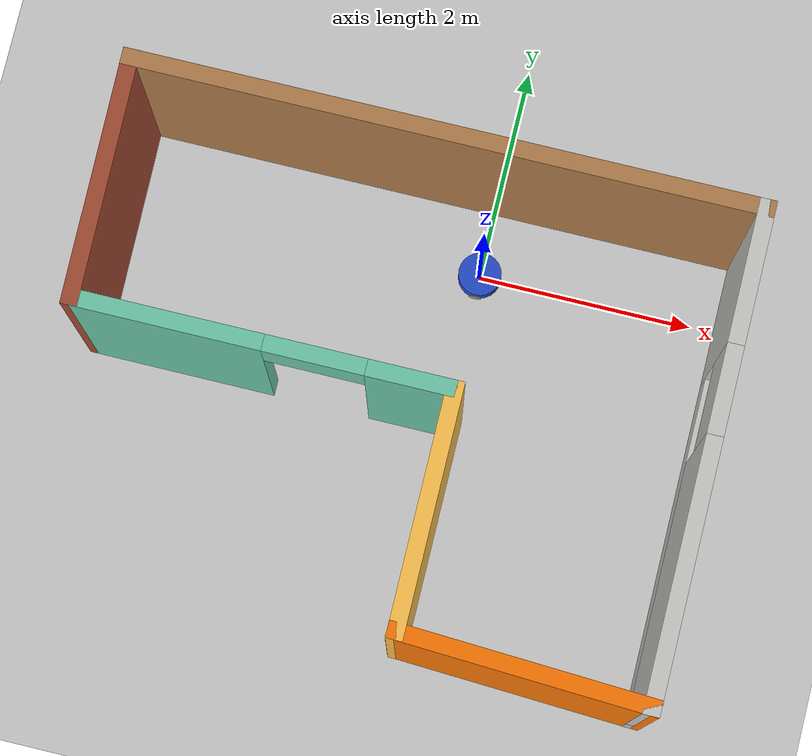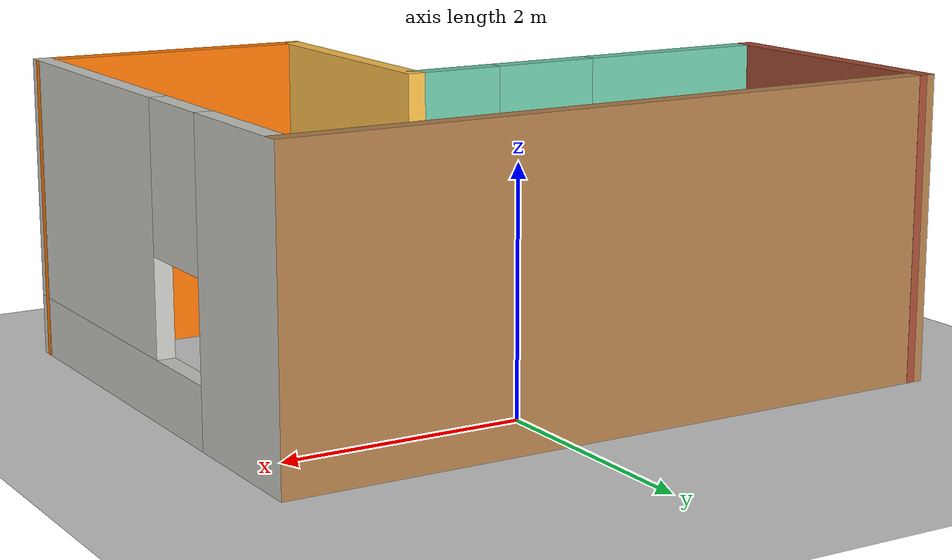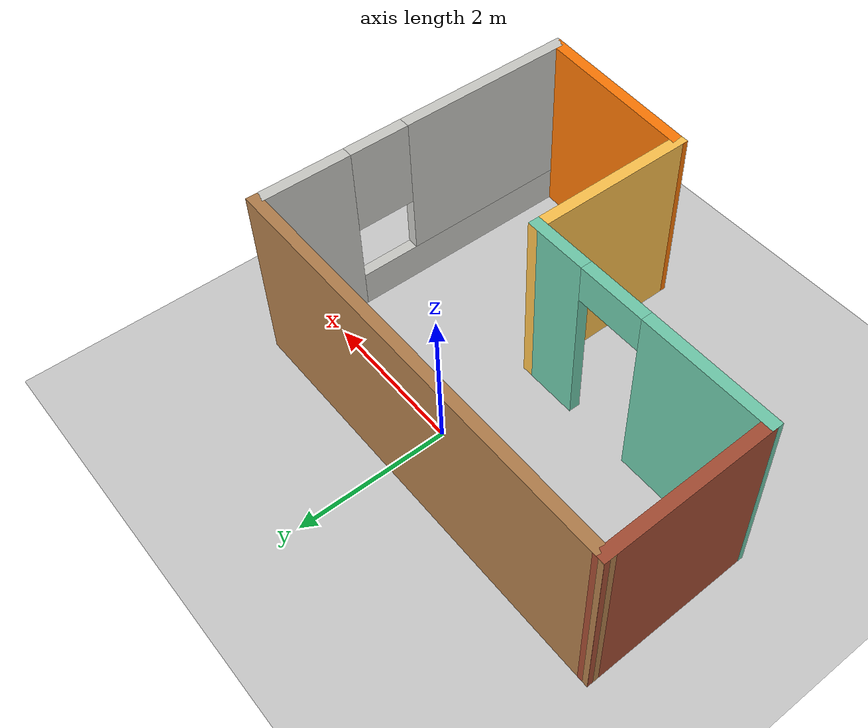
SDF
<sdf version="1.7">
 <world name="default">
  <light name="sun" type="directional">
   <pose>0 0 10 0 -0 0</pose>
   <diffuse>0.8 0.8 0.8 1</diffuse>
   <specular>0.2 0.2 0.2 1</specular>
   <attenuation>
    <range>1000</range>
    <constant>0.9</constant>
    <linear>0.01</linear>
    <quadratic>0.001</quadratic>
   </attenuation>
   <direction>-0.5 0.1 -0.9</direction>
   <spot><inner_angle>0</inner_angle><outer_angle>0</outer_angle><falloff>0</falloff></spot>
  </light>
  <model name="ground_plane">
   <static>1</static>
   <link name="link">
    <collision name="collision">
     <geometry><plane><normal>0 0 1</normal><size>100 100</size></plane></geometry>
     <surface><friction><ode><mu>100</mu><mu2>50</mu2></ode></friction></surface>
    </collision>
    <visual name="visual">
     <cast_shadows>0</cast_shadows>
     <geometry><plane><normal>0 0 1</normal><size>100 100</size></plane></geometry>
     <material>
      <script><uri>file://media/materials/scripts/gazebo.material</uri><name>Gazebo/Grey</name></script>
     </material>
    </visual>
   </link>
  </model>
  <gravity>0 0 -9.8</gravity>
  <magnetic_field>6e-06 2.3e-05 -4.2e-05</magnetic_field>
  <atmosphere type="adiabatic"/>
  <physics type="ode">
   <max_step_size>0.001</max_step_size>
   <real_time_factor>1</real_time_factor>
   <real_time_update_rate>1000</real_time_update_rate>
  </physics>
  <scene><ambient>0.4 0.4 0.4 1</ambient><background>0.7 0.7 0.7 1</background><shadows>1</shadows></scene>
  <spherical_coordinates>
   <surface_model>EARTH_WGS84</surface_model>
   <latitude_deg>0</latitude_deg>
   <longitude_deg>0</longitude_deg>
   <elevation>0</elevation>
   <heading_deg>0</heading_deg>
  </spherical_coordinates>
  <model name="mrobot">
   <link name="base_footprint">
    <inertial>
     <pose>0 0 0.11 0 -0 0</pose>
     <mass>20</mass>
     <inertia><ixx>0.242667</ixx><ixy>0</ixy><ixz>0</ixz><iyy>0.242667</iyy><iyz>0</iyz><izz>0.4</izz></inertia>
    </inertial>
    <collision name="base_footprint_fixed_joint_lump__base_link_collision">
     <pose>0 0 0.11 0 -0 0</pose>
     <geometry><cylinder><length>0.16</length><radius>0.2</radius></cylinder></geometry>
    </collision>
    <visual name="base_footprint_visual"><geometry><box><size>0.001 0.001 0.001</size></box></geometry></visual>
    <visual name="base_footprint_fixed_joint_lump__base_link_visual_1">
     <pose>0 0 0.11 0 -0 0</pose>
     <geometry><cylinder><length>0.16</length><radius>0.2</radius></cylinder></geometry>
     <material>
      <script><name>Gazebo/Blue</name><uri>file://media/materials/scripts/gazebo.material</uri></script>
     </material>
    </visual>
   </link>
   <joint name="back_caster_joint" type="revolute">
    <pose relative_to="base_footprint">0.18 0 0.015 0 -0 0</pose>
    <parent>base_footprint</parent>
    <child>back_caster_link</child>
    <axis>
     <xyz>0 1 0</xyz>
     <limit><lower>-1e+16</lower><upper>1e+16</upper></limit>
     <dynamics><spring_reference>0</spring_reference><spring_stiffness>0</spring_stiffness></dynamics>
    </axis>
   </joint>
   <link name="back_caster_link">
    <pose relative_to="back_caster_joint">0 0 0 0 -0 0</pose>
    <inertial>
     <mass>0.5</mass>
     <inertia><ixx>4.5e-05</ixx><ixy>0</ixy><ixz>0</ixz><iyy>4.5e-05</iyy><iyz>0</iyz><izz>4.5e-05</izz></inertia>
    </inertial>
    <collision name="back_caster_link_collision">
     <geometry><sphere><radius>0.015</radius></sphere></geometry>
    </collision>
    <visual name="back_caster_link_visual">
     <geometry><sphere><radius>0.015</radius></sphere></geometry>
     <material>
      <script><name>Gazebo/Black</name><uri>file://media/materials/scripts/gazebo.material</uri></script>
     </material>
    </visual>
   </link>
   <joint name="front_caster_joint" type="revolute">
    <pose relative_to="base_footprint">-0.18 0 0.015 0 -0 0</pose>
    <parent>base_footprint</parent>
    <child>front_caster_link</child>
    <axis>
     <xyz>0 1 0</xyz>
     <limit><lower>-1e+16</lower><upper>1e+16</upper></limit>
     <dynamics><spring_reference>0</spring_reference><spring_stiffness>0</spring_stiffness></dynamics>
    </axis>
   </joint>
   <link name="front_caster_link">
    <pose relative_to="front_caster_joint">0 0 0 0 -0 0</pose>
    <inertial>
     <mass>0.5</mass>
     <inertia><ixx>4.5e-05</ixx><ixy>0</ixy><ixz>0</ixz><iyy>4.5e-05</iyy><iyz>0</iyz><izz>4.5e-05</izz></inertia>
    </inertial>
    <collision name="front_caster_link_collision">
     <geometry><sphere><radius>0.015</radius></sphere></geometry>
    </collision>
    <visual name="front_caster_link_visual">
     <geometry><sphere><radius>0.015</radius></sphere></geometry>
     <material>
      <script><name>Gazebo/Black</name><uri>file://media/materials/scripts/gazebo.material</uri></script>
     </material>
    </visual>
   </link>
   <joint name="left_wheel_joint" type="revolute">
    <pose relative_to="base_footprint">0 -0.19 0.06 0 -0 0</pose>
    <parent>base_footprint</parent>
    <child>left_wheel_link</child>
    <axis>
     <xyz>0 1 0</xyz>
     <limit><lower>-1e+16</lower><upper>1e+16</upper></limit>
     <dynamics><spring_reference>0</spring_reference><spring_stiffness>0</spring_stiffness></dynamics>
    </axis>
   </joint>
   <link name="left_wheel_link">
    <pose relative_to="left_wheel_joint">0 0 0 0 -0 0</pose>
    <inertial>
     <mass>2</mass>
     <inertia>
      <ixx>0.00190417</ixx>
      <ixy>0</ixy>
      <ixz>0</ixz>
      <iyy>0.00190417</iyy>
      <iyz>0</iyz>
      <izz>0.0036</izz>
     </inertia>
    </inertial>
    <collision name="left_wheel_link_collision">
     <pose>0 0 0 1.5708 -0 0</pose>
     <geometry><cylinder><length>0.025</length><radius>0.06</radius></cylinder></geometry>
    </collision>
    <visual name="left_wheel_link_visual">
     <pose>0 0 0 1.5708 -0 0</pose>
     <geometry><cylinder><length>0.025</length><radius>0.06</radius></cylinder></geometry>
     <material>
      <script><name>Gazebo/Gray</name><uri>file://media/materials/scripts/gazebo.material</uri></script>
     </material>
    </visual>
   </link>
   <joint name="right_wheel_joint" type="revolute">
    <pose relative_to="base_footprint">0 0.19 0.06 0 -0 0</pose>
    <parent>base_footprint</parent>
    <child>right_wheel_link</child>
    <axis>
     <xyz>0 1 0</xyz>
     <limit><lower>-1e+16</lower><upper>1e+16</upper></limit>
     <dynamics><spring_reference>0</spring_reference><spring_stiffness>0</spring_stiffness></dynamics>
    </axis>
   </joint>
   <link name="right_wheel_link">
    <pose relative_to="right_wheel_joint">0 0 0 0 -0 0</pose>
    <inertial>
     <mass>2</mass>
     <inertia>
      <ixx>0.00190417</ixx>
      <ixy>0</ixy>
      <ixz>0</ixz>
      <iyy>0.00190417</iyy>
      <iyz>0</iyz>
      <izz>0.0036</izz>
     </inertia>
    </inertial>
    <collision name="right_wheel_link_collision">
     <pose>0 0 0 1.5708 -0 0</pose>
     <geometry><cylinder><length>0.025</length><radius>0.06</radius></cylinder></geometry>
    </collision>
    <visual name="right_wheel_link_visual">
     <pose>0 0 0 1.5708 -0 0</pose>
     <geometry><cylinder><length>0.025</length><radius>0.06</radius></cylinder></geometry>
     <material>
      <script><name>Gazebo/Gray</name><uri>file://media/materials/scripts/gazebo.material</uri></script>
     </material>
    </visual>
   </link>
   <static>0</static>
   <plugin name="differential_drive_controller" filename="libgazebo_ros_diff_drive.so">
    <rosDebugLevel>Debug</rosDebugLevel>
    <publishWheelTF>1</publishWheelTF>
    <robotNamespace>/</robotNamespace>
    <publishTf>1</publishTf>
    <publishWheelJointState>1</publishWheelJointState>
    <alwaysOn>1</alwaysOn>
    <updateRate>100.0</updateRate>
    <legacyMode>1</legacyMode>
    <leftJoint>left_wheel_joint</leftJoint>
    <rightJoint>right_wheel_joint</rightJoint>
    <wheelSeparation>0.38</wheelSeparation>
    <wheelDiameter>0.12</wheelDiameter>
    <broadcastTF>1</broadcastTF>
    <wheelTorque>30</wheelTorque>
    <wheelAcceleration>1.8</wheelAcceleration>
    <commandTopic>cmd_vel</commandTopic>
    <odometryFrame>odom</odometryFrame>
    <odometryTopic>odom</odometryTopic>
    <robotBaseFrame>base_footprint</robotBaseFrame>
   </plugin>
   <pose>-0.000425 0.000437 0 0 0 -2.5e-05</pose>
  </model>
  <model name="room">
   <pose>-0.498712 -1.48629 0 0 -0 0</pose>
   <link name="Wall_0">
    <pose>-1.09629 0.036288 0 0 -0 3.14159</pose>
    <visual name="Wall_0_Visual_0">
     <pose>-1.3275 0 1.25 0 -0 0</pose>
     <geometry><box><size>0.845 0.15 2.5</size></box></geometry>
     <material>
      <script><uri>file://media/materials/scripts/gazebo.material</uri><name>Gazebo/Grey</name></script>
      <ambient>0.435294 0.796078 0.67451 1</ambient>
     </material>
     <meta><layer>0</layer></meta>
    </visual>
    <collision name="Wall_0_Collision_0">
     <geometry><box><size>0.845 0.15 2.5</size></box></geometry>
     <pose>-1.3275 0 1.25 0 -0 0</pose>
    </collision>
    <visual name="Wall_0_Visual_1">
     <pose>0.8725 0 1.25 0 -0 0</pose>
     <geometry><box><size>1.755 0.15 2.5</size></box></geometry>
     <material>
      <script><uri>file://media/materials/scripts/gazebo.material</uri><name>Gazebo/Grey</name></script>
      <ambient>0.435294 0.796078 0.67451 1</ambient>
     </material>
     <meta><layer>0</layer></meta>
    </visual>
    <collision name="Wall_0_Collision_1">
     <geometry><box><size>1.755 0.15 2.5</size></box></geometry>
     <pose>0.8725 0 1.25 0 -0 0</pose>
    </collision>
    <visual name="Wall_0_Visual_2">
     <pose>-0.455 0 2.25 0 -0 0</pose>
     <geometry><box><size>0.9 0.15 0.5</size></box></geometry>
     <material>
      <script><uri>file://media/materials/scripts/gazebo.material</uri><name>Gazebo/Grey</name></script>
      <ambient>0.435294 0.796078 0.67451 1</ambient>
     </material>
     <meta><layer>0</layer></meta>
    </visual>
    <collision name="Wall_0_Collision_2">
     <geometry><box><size>0.9 0.15 0.5</size></box></geometry>
     <pose>-0.455 0 2.25 0 -0 0</pose>
    </collision>
   </link>
   <link name="Wall_10">
    <collision name="Wall_10_Collision">
     <geometry><box><size>2.37272 0.15 2.5</size></box></geometry>
     <pose>0 0 1.25 0 -0 0</pose>
    </collision>
    <visual name="Wall_10_Visual">
     <pose>0 0 1.25 0 -0 0</pose>
     <geometry><box><size>2.37272 0.15 2.5</size></box></geometry>
     <material>
      <script><uri>file://media/materials/scripts/gazebo.material</uri><name>Gazebo/Grey</name></script>
      <ambient>0.996078 0.47451 0.0196078 1</ambient>
     </material>
     <meta><layer>0</layer></meta>
    </visual>
    <pose>1.68871 -2.11871 0 0 -0 -0.049509</pose>
   </link>
   <link name="Wall_2">
    <collision name="Wall_2_Collision">
     <geometry><box><size>2.25 0.15 2.5</size></box></geometry>
     <pose>0 0 1.25 0 -0 0</pose>
    </collision>
    <visual name="Wall_2_Visual">
     <pose>0 0 1.25 0 -0 0</pose>
     <geometry><box><size>2.25 0.15 2.5</size></box></geometry>
     <material>
      <script><uri>file://media/materials/scripts/gazebo.material</uri><name>Gazebo/Grey</name></script>
      <ambient>1 0.764706 0.305882 1</ambient>
     </material>
     <meta><layer>0</layer></meta>
    </visual>
    <pose>0.578712 -1.01371 0 0 -0 -1.5708</pose>
   </link>
   <link name="Wall_5">
    <collision name="Wall_5_Collision">
     <geometry><box><size>2.29021 0.15 2.5</size></box></geometry>
     <pose>0 0 1.25 0 -0 0</pose>
    </collision>
    <visual name="Wall_5_Visual">
     <pose>0 0 1.25 0 -0 0</pose>
     <geometry><box><size>2.29021 0.15 2.5</size></box></geometry>
     <material>
      <script><uri>file://media/materials/scripts/gazebo.material</uri><name>Gazebo/Bricks</name></script>
      <ambient>1 1 1 1</ambient>
     </material>
     <meta><layer>0</layer></meta>
    </visual>
    <pose>-2.78629 1.10629 0 0 -0 -1.55678</pose>
   </link>
   <link name="Wall_7">
    <collision name="Wall_7_Collision">
     <geometry><box><size>5.75 0.15 2.5</size></box></geometry>
     <pose>0 0 1.25 0 -0 0</pose>
    </collision>
    <visual name="Wall_7_Visual">
     <pose>0 0 1.25 0 -0 0</pose>
     <geometry><box><size>5.75 0.15 2.5</size></box></geometry>
     <material>
      <script><uri>file://media/materials/scripts/gazebo.material</uri><name>Gazebo/Wood</name></script>
      <ambient>0.760784 0.662745 0.627451 1</ambient>
     </material>
     <meta><layer>0</layer></meta>
    </visual>
    <pose>-0.001288 2.17629 0 0 -0 0</pose>
   </link>
   <link name="Wall_8">
    <pose>2.79871 0.001288 0 0 -0 -1.5708</pose>
    <visual name="Wall_8_Visual_0">
     <pose>-1.6075 0 1.25 0 -0 0</pose>
     <geometry><box><size>1.285 0.15 2.5</size></box></geometry>
     <material>
      <script><uri>file://media/materials/scripts/gazebo.material</uri><name>Gazebo/CeilingTiled</name></script>
      <ambient>0.921569 0.807843 0.615686 1</ambient>
     </material>
     <meta><layer>0</layer></meta>
    </visual>
    <collision name="Wall_8_Collision_0">
     <geometry><box><size>1.285 0.15 2.5</size></box></geometry>
     <pose>-1.6075 0 1.25 0 -0 0</pose>
    </collision>
    <visual name="Wall_8_Visual_1">
     <pose>0.6425 0 0.25 0 -0 0</pose>
     <geometry><box><size>3.215 0.15 0.5</size></box></geometry>
     <material>
      <script><uri>file://media/materials/scripts/gazebo.material</uri><name>Gazebo/CeilingTiled</name></script>
      <ambient>0.921569 0.807843 0.615686 1</ambient>
     </material>
     <meta><layer>0</layer></meta>
    </visual>
    <collision name="Wall_8_Collision_1">
     <geometry><box><size>3.215 0.15 0.5</size></box></geometry>
     <pose>0.6425 0 0.25 0 -0 0</pose>
    </collision>
    <visual name="Wall_8_Visual_2">
     <pose>1.0425 0 1.5 0 -0 0</pose>
     <geometry><box><size>2.415 0.15 2</size></box></geometry>
     <material>
      <script><uri>file://media/materials/scripts/gazebo.material</uri><name>Gazebo/CeilingTiled</name></script>
      <ambient>0.921569 0.807843 0.615686 1</ambient>
     </material>
     <meta><layer>0</layer></meta>
    </visual>
    <collision name="Wall_8_Collision_2">
     <geometry><box><size>2.415 0.15 2</size></box></geometry>
     <pose>1.0425 0 1.5 0 -0 0</pose>
    </collision>
    <visual name="Wall_8_Visual_3">
     <pose>-0.565 0 1.9 0 -0 0</pose>
     <geometry><box><size>0.8 0.15 1.2</size></box></geometry>
     <material>
      <script><uri>file://media/materials/scripts/gazebo.material</uri><name>Gazebo/CeilingTiled</name></script>
      <ambient>0.921569 0.807843 0.615686 1</ambient>
     </material>
     <meta><layer>0</layer></meta>
    </visual>
    <collision name="Wall_8_Collision_3">
     <geometry><box><size>0.8 0.15 1.2</size></box></geometry>
     <pose>-0.565 0 1.9 0 -0 0</pose>
    </collision>
   </link>
   <static>1</static>
  </model>
 </world>
</sdf>
